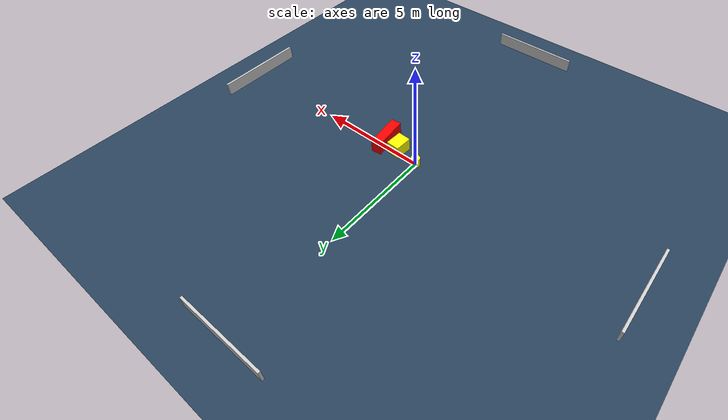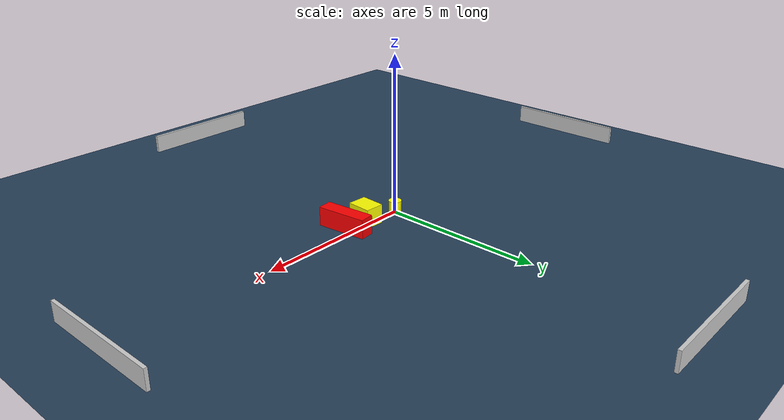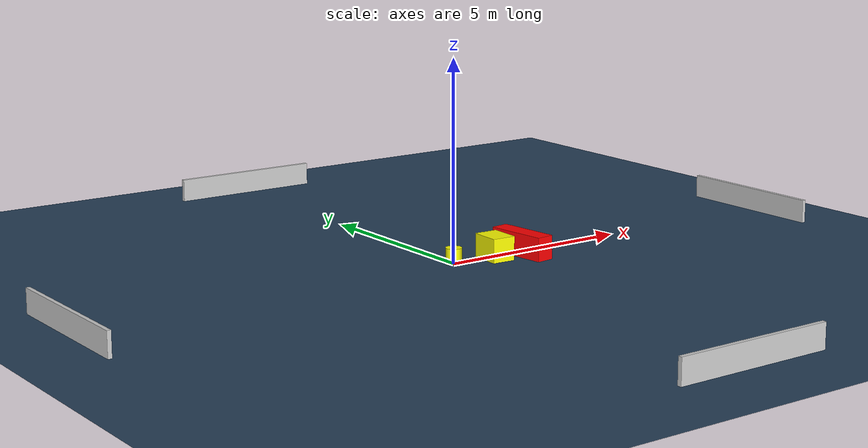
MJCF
<?xml version="1.0" ?>
<mujoco model="generated_environment">
  <option timestep="0.01" integrator="RK4" cone="elliptic"/>
  <default>
    <geom density="1"/>
  </default>
  <asset>
    <texture builtin="gradient" height="3072" name="skybox" rgb1="0.3 0.5 0.7" rgb2="0 0 0" type="skybox" width="512"/>
    <texture builtin="checker" height="300" name="groundplane" rgb1="0.2 0.3 0.4" rgb2="0.1 0.2 0.3" type="2d" width="300"/>
    <material name="groundplane" reflectance="0.2" texrepeat="5 5" texture="groundplane"/>
  </asset>
  <worldbody>
    <light dir="0 0 -1" directional="true" pos="0 0 1.5"/>
    <geom condim="3" friction="0.5 0.005 0.001" material="groundplane" name="floor" pos="0 0 0" size="0 0 0.05" type="plane"/>
    <body name="walls">
      <geom name="wall_1" condim="4" pos="-10.0 0.0 0.3" rgba="0.800000011920929 0.800000011920929 0.800000011920929 1.0" size="0.05 2.0 0.3" type="box"/>
      <geom name="wall_2" condim="4" pos="10.0 0.0 0.3" rgba="0.800000011920929 0.800000011920929 0.800000011920929 1.0" size="0.05 2.0 0.3" type="box"/>
      <geom name="wall_3" condim="4" pos="0.0 -10.0 0.3" rgba="0.800000011920929 0.800000011920929 0.800000011920929 1.0" size="2.0 0.05 0.3" type="box"/>
      <geom name="wall_4" condim="4" pos="0.0 10.0 0.3" rgba="0.800000011920929 0.800000011920929 0.800000011920929 1.0" size="2.0 0.05 0.3" type="box"/>
    </body>
    <body name="robot">
      <joint name="joint_x" type="slide" pos="0 0 0" axis="1 0 0"/>
      <joint name="joint_y" type="slide" pos="0 0 0" axis="0 1 0"/>
      <geom name="robot" type="cylinder" pos="0.0 0.0 0.2" size="0.2 0.2 0.0" mass="5.0" friction="1.0 0.005 0.0001" condim="4" rgba="1.0 1.0 0.0 1.0"/>
    </body>
    <body name="obstacle_1_movable">
      <geom name="obstacle_1_movable" condim="4" pos="1.094186930314861 -0.19944728743023843 0.3" euler="0 0 87.48658683865327" friction="0.0 0.005 0.001" rgba="1.0 1.0 0.0 1.0" size="0.38971316687576696 0.30489481669732404 0.3" type="box" mass="0.1"/>
      <joint type="free"/>
    </body>
    <body name="obstacle_2_static">
      <geom name="obstacle_2_static" condim="4" pos="1.867414915595537 -0.2896253700301436 0.3" euler="0 0 96.52048990629343" friction="0.0 0.005 0.001" rgba="1.0 0.0 0.0 1.0" size="0.799644928743598 0.23142170584881583 0.3" type="box"/>
    </body>
  </worldbody>
  <actuator>
    <motor name="actuator_x" joint="joint_x" gear="1" ctrlrange="-1 1"/>
    <motor name="actuator_y" joint="joint_y" gear="1" ctrlrange="-1 1"/>
  </actuator>
</mujoco>
